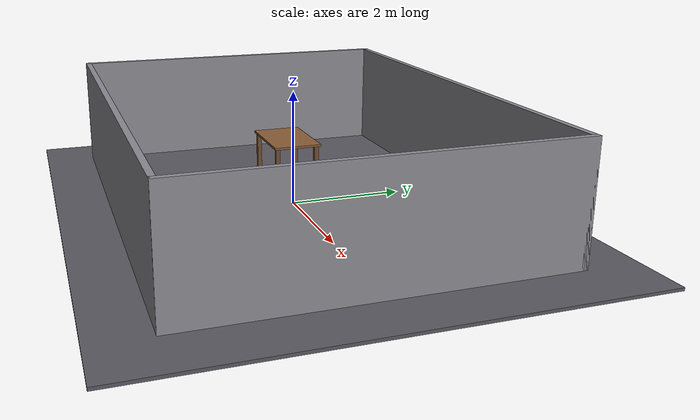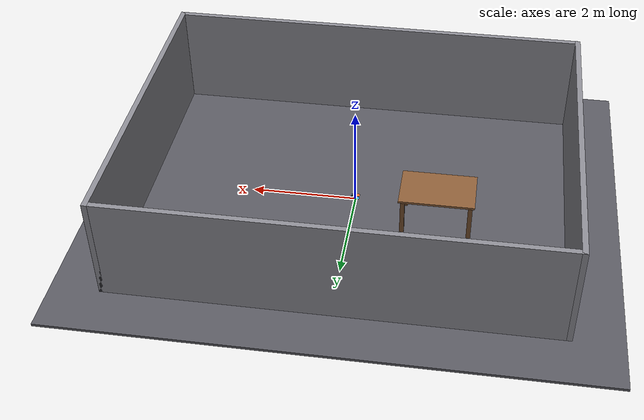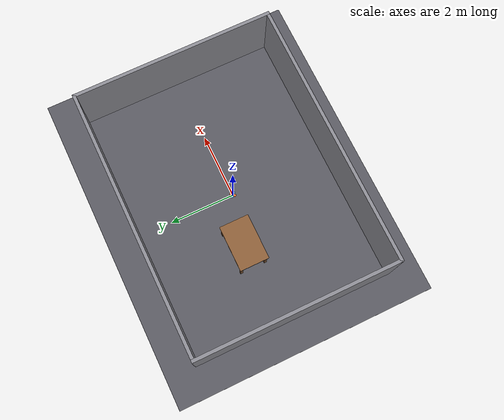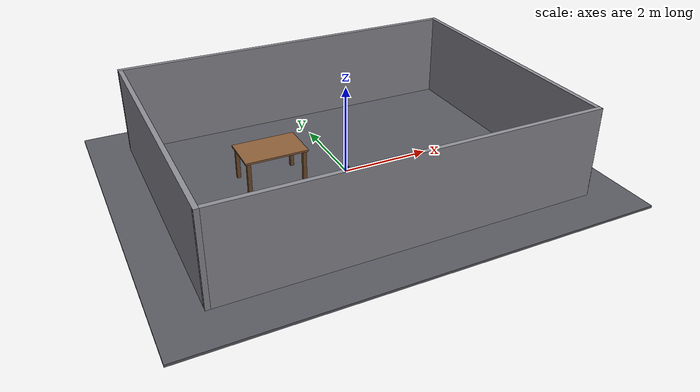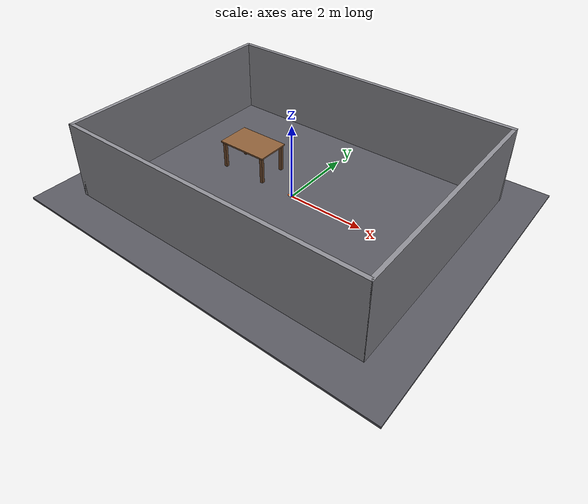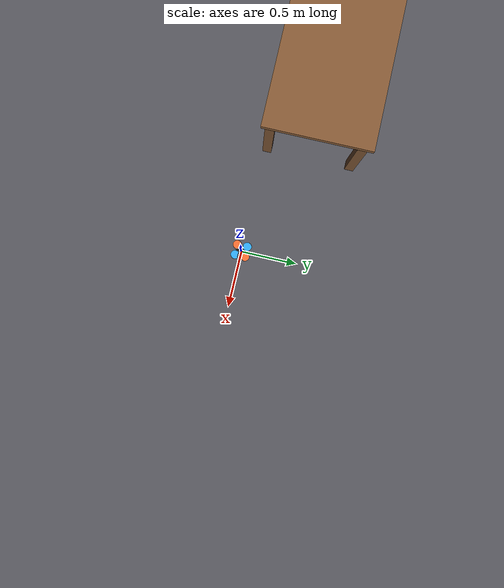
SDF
<?xml version="1.0"?>
<sdf version="1.10">
  <world name="table_room">
    <plugin filename="gz-sim-physics-system" name="gz::sim::systems::Physics"/>
    <plugin filename="gz-sim-user-commands-system" name="gz::sim::systems::UserCommands"/>
    <plugin filename="gz-sim-scene-broadcaster-system" name="gz::sim::systems::SceneBroadcaster"/>
    <plugin filename="gz-sim-sensors-system" name="gz::sim::systems::Sensors">
      <render_engine>ogre2</render_engine>
    </plugin>
    <plugin filename="gz-sim-imu-system" name="gz::sim::systems::Imu"/>

    <gravity>0 0 -9.80665</gravity>
    <magnetic_field>6e-06 2.3e-05 -4.2e-05</magnetic_field>
    <atmosphere type="adiabatic"/>

    <light name="ceiling_light" type="directional">
      <pose>0 0 4 0 0 0</pose>
      <diffuse>0.9 0.9 0.9 1</diffuse>
      <specular>0.2 0.2 0.2 1</specular>
      <direction>-0.3 0.2 -1</direction>
    </light>

    <model name="floor">
      <static>true</static>
      <pose>0 0 -0.025 0 0 0</pose>
      <link name="link">
        <collision name="collision">
          <geometry><box><size>10 8 0.05</size></box></geometry>
        </collision>
        <visual name="visual">
          <geometry><box><size>10 8 0.05</size></box></geometry>
          <material><diffuse>0.35 0.35 0.38 1</diffuse></material>
        </visual>
      </link>
    </model>

    <!-- The same 8 by 6 m room as room_test.sdf and cluttered_room.sdf, so the
         walls are one known quantity and the table is the only new one. -->
    <model name="wall_x_plus">
      <static>true</static>
      <pose>4.05 0 1.0 0 0 0</pose>
      <link name="link">
        <collision name="collision"><geometry><box><size>0.1 6.2 2.0</size></box></geometry></collision>
        <visual name="visual">
          <geometry><box><size>0.1 6.2 2.0</size></box></geometry>
          <material><diffuse>0.55 0.55 0.58 1</diffuse></material>
        </visual>
      </link>
    </model>

    <model name="wall_x_minus">
      <static>true</static>
      <pose>-4.05 0 1.0 0 0 0</pose>
      <link name="link">
        <collision name="collision"><geometry><box><size>0.1 6.2 2.0</size></box></geometry></collision>
        <visual name="visual">
          <geometry><box><size>0.1 6.2 2.0</size></box></geometry>
          <material><diffuse>0.55 0.55 0.58 1</diffuse></material>
        </visual>
      </link>
    </model>

    <model name="wall_y_plus">
      <static>true</static>
      <pose>0 3.05 1.0 0 0 0</pose>
      <link name="link">
        <collision name="collision"><geometry><box><size>8.2 0.1 2.0</size></box></geometry></collision>
        <visual name="visual">
          <geometry><box><size>8.2 0.1 2.0</size></box></geometry>
          <material><diffuse>0.55 0.55 0.58 1</diffuse></material>
        </visual>
      </link>
    </model>

    <model name="wall_y_minus">
      <static>true</static>
      <pose>0 -3.05 1.0 0 0 0</pose>
      <link name="link">
        <collision name="collision"><geometry><box><size>8.2 0.1 2.0</size></box></geometry></collision>
        <visual name="visual">
          <geometry><box><size>8.2 0.1 2.0</size></box></geometry>
          <material><diffuse>0.55 0.55 0.58 1</diffuse></material>
        </visual>
      </link>
    </model>

    <model name="table_top">
      <static>true</static>
      <pose>-1.6 0.4 0.75 0 0 0</pose>
      <link name="link">
        <collision name="collision"><geometry><box><size>1.4 0.9 0.04</size></box></geometry></collision>
        <visual name="visual">
          <geometry><box><size>1.4 0.9 0.04</size></box></geometry>
          <material><diffuse>0.55 0.37 0.22 1</diffuse></material>
        </visual>
      </link>
    </model>

    <model name="table_leg_a">
      <static>true</static>
      <pose>-2.22 0.02 0.365 0 0 0</pose>
      <link name="link">
        <collision name="collision"><geometry><box><size>0.08 0.08 0.73</size></box></geometry></collision>
        <visual name="visual">
          <geometry><box><size>0.08 0.08 0.73</size></box></geometry>
          <material><diffuse>0.45 0.30 0.18 1</diffuse></material>
        </visual>
      </link>
    </model>

    <model name="table_leg_b">
      <static>true</static>
      <pose>-2.22 0.78 0.365 0 0 0</pose>
      <link name="link">
        <collision name="collision"><geometry><box><size>0.08 0.08 0.73</size></box></geometry></collision>
        <visual name="visual">
          <geometry><box><size>0.08 0.08 0.73</size></box></geometry>
          <material><diffuse>0.45 0.30 0.18 1</diffuse></material>
        </visual>
      </link>
    </model>

    <model name="table_leg_c">
      <static>true</static>
      <pose>-0.98 0.02 0.365 0 0 0</pose>
      <link name="link">
        <collision name="collision"><geometry><box><size>0.08 0.08 0.73</size></box></geometry></collision>
        <visual name="visual">
          <geometry><box><size>0.08 0.08 0.73</size></box></geometry>
          <material><diffuse>0.45 0.30 0.18 1</diffuse></material>
        </visual>
      </link>
    </model>

    <model name="table_leg_d">
      <static>true</static>
      <pose>-0.98 0.78 0.365 0 0 0</pose>
      <link name="link">
        <collision name="collision"><geometry><box><size>0.08 0.08 0.73</size></box></geometry></collision>
        <visual name="visual">
          <geometry><box><size>0.08 0.08 0.73</size></box></geometry>
          <material><diffuse>0.45 0.30 0.18 1</diffuse></material>
        </visual>
      </link>
    </model>
    <!-- The vehicle itself, at the origin as in every other world here, which
         puts it 1.6 m clear of the table's near legs: far enough to fly at the
         table rather than starting under it. -->
    <include>
      <uri>model://openipc_cinewhoop</uri>
      <pose>0 0 0.035 0 0 0</pose>
    </include>
  </world>
</sdf>

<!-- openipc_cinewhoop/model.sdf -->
<sdf version="1.10">
  <model name="openipc_cinewhoop">
    <!-- World placement belongs to the including world, not the model. -->
    <pose>0 0 0 0 0 0</pose>
    <static>false</static>

    <!-- Publish rotor motion so motor mapping can be verified headlessly. -->
    <plugin filename="gz-sim-joint-state-publisher-system"
            name="gz::sim::systems::JointStatePublisher"/>

    <link name="base_link">
      <inertial>
        <mass>0.228</mass>
        <inertia>
          <ixx>0.00028</ixx>
          <iyy>0.00028</iyy>
          <izz>0.00048</izz>
          <ixy>0</ixy>
          <ixz>0</ixz>
          <iyz>0</iyz>
        </inertia>
      </inertial>
      <collision name="body_collision">
        <geometry><box><size>0.105 0.105 0.018</size></box></geometry>
      </collision>
      <visual name="body_visual">
        <geometry><box><size>0.105 0.105 0.018</size></box></geometry>
        <material><diffuse>0.04 0.045 0.05 1</diffuse></material>
      </visual>
    </link>

    <link name="front_lidar_link">
      <pose relative_to="base_link">0.046 0 0.050 0 0 0</pose>
      <inertial><mass>0.042</mass><inertia><ixx>0.0000078</ixx><iyy>0.0000078</iyy><izz>0.0000078</izz></inertia></inertial>
      <visual name="visual">
        <geometry><box><size>0.0386 0.0386 0.0333</size></box></geometry>
        <material><diffuse>0.24 0.24 0.26 1</diffuse></material>
      </visual>
      <sensor name="front_lidar" type="gpu_lidar">
        <gz_frame_id>front_lidar_link</gz_frame_id>
        <always_on>true</always_on>
        <update_rate>10</update_rate>
        <ray>
          <scan>
            <horizontal>
              <samples>360</samples>
              <resolution>1</resolution>
              <min_angle>-3.141593</min_angle>
              <max_angle>3.141593</max_angle>
            </horizontal>
            <vertical>
              <samples>1</samples>
              <resolution>1</resolution>
              <min_angle>0</min_angle>
              <max_angle>0</max_angle>
            </vertical>
          </scan>
          <range>
            <min>0.02</min>
            <max>12.0</max>
            <resolution>0.01</resolution>
          </range>
        </ray>
      </sensor>
    </link>
    <joint name="front_lidar_joint" type="fixed">
      <parent>base_link</parent>
      <child>front_lidar_link</child>
    </joint>

    <link name="rangefinder_link">
      <pose relative_to="base_link">0.020 0 -0.016 0 1.57079632679 0</pose>
      <inertial><mass>0.002</mass><inertia><ixx>0.0000001</ixx><iyy>0.0000001</iyy><izz>0.0000001</izz></inertia></inertial>
      <sensor name="down_range" type="gpu_lidar">
        <gz_frame_id>rangefinder_link</gz_frame_id>
        <always_on>true</always_on>
        <update_rate>20</update_rate>
        <ray>
          <scan>
            <horizontal>
              <samples>5</samples>
              <resolution>1</resolution>
              <min_angle>-0.0175</min_angle>
              <max_angle>0.0175</max_angle>
            </horizontal>
          </scan>
          <range>
            <min>0.05</min>
            <max>5.0</max>
            <resolution>0.01</resolution>
          </range>
        </ray>
      </sensor>
    </link>
    <joint name="rangefinder_joint" type="fixed">
      <parent>base_link</parent>
      <child>rangefinder_link</child>
    </joint>

    <link name="imu_link">
      <pose relative_to="base_link">0 0 0.018 0 0 0</pose>
      <inertial><mass>0.002</mass><inertia><ixx>0.0000001</ixx><iyy>0.0000001</iyy><izz>0.0000001</izz></inertia></inertial>
      <sensor name="imu" type="imu">
        <gz_frame_id>imu_link</gz_frame_id>
        <pose degrees="true">0 0 0 180 0 0</pose>
        <always_on>true</always_on>
        <!-- Iris runs its IMU at 1000 Hz; raising ours is worth doing once the
             rotor velocity loop is stable enough to benefit from it. -->
        <update_rate>100</update_rate>
      </sensor>
      <sensor name="imu_ros" type="imu">
        <gz_frame_id>imu_link</gz_frame_id>
        <always_on>true</always_on>
        <update_rate>100</update_rate>
      </sensor>
    </link>
    <joint name="imu_joint" type="fixed">
      <parent>base_link</parent>
      <child>imu_link</child>
    </joint>

    <link name="camera_link">
      <pose relative_to="base_link">0.068 0 0.012 0 0 0</pose>
      <inertial><mass>0.006</mass><inertia><ixx>0.0000005</ixx><iyy>0.0000005</iyy><izz>0.0000005</izz></inertia></inertial>
      <visual name="visual">
        <geometry><box><size>0.026 0.022 0.020</size></box></geometry>
        <material><diffuse>0.08 0.08 0.08 1</diffuse></material>
      </visual>
      <sensor name="front_camera" type="camera">
        <gz_frame_id>camera_optical_frame</gz_frame_id>
        <pose>0.014 0 0 0 0 0</pose>
        <always_on>true</always_on>
        <update_rate>15</update_rate>
        <camera>
          <horizontal_fov>1.3962634</horizontal_fov>
          <image>
            <width>640</width>
            <height>480</height>
            <format>R8G8B8</format>
          </image>
          <clip>
            <near>0.05</near>
            <far>20</far>
          </clip>
        </camera>
      </sensor>
    </link>
    <joint name="camera_joint" type="fixed">
      <parent>base_link</parent>
      <child>camera_link</child>
    </joint>

    <link name="motor_1"><pose relative_to="base_link">0.04525 -0.04525 0.012 0 0 0</pose><inertial><mass>0.005</mass><inertia><ixx>0.0000002</ixx><iyy>0.0000002</iyy><izz>0.0000002</izz></inertia></inertial></link>
    <joint name="motor_1_joint" type="fixed"><parent>base_link</parent><child>motor_1</child></joint>
    <link name="motor_2"><pose relative_to="base_link">-0.04525 0.04525 0.012 0 0 0</pose><inertial><mass>0.005</mass><inertia><ixx>0.0000002</ixx><iyy>0.0000002</iyy><izz>0.0000002</izz></inertia></inertial></link>
    <joint name="motor_2_joint" type="fixed"><parent>base_link</parent><child>motor_2</child></joint>
    <link name="motor_3"><pose relative_to="base_link">0.04525 0.04525 0.012 0 0 0</pose><inertial><mass>0.005</mass><inertia><ixx>0.0000002</ixx><iyy>0.0000002</iyy><izz>0.0000002</izz></inertia></inertial></link>
    <joint name="motor_3_joint" type="fixed"><parent>base_link</parent><child>motor_3</child></joint>
    <link name="motor_4"><pose relative_to="base_link">-0.04525 -0.04525 0.012 0 0 0</pose><inertial><mass>0.005</mass><inertia><ixx>0.0000002</ixx><iyy>0.0000002</iyy><izz>0.0000002</izz></inertia></inertial></link>
    <joint name="motor_4_joint" type="fixed"><parent>base_link</parent><child>motor_4</child></joint>

    <!-- 3 inch propellers, ordered like ArduPilot's Quad X reference model. -->
    <link name="rotor_0"><pose relative_to="base_link">0.04525 -0.04525 0.025 0 0 0</pose><inertial><mass>0.0015</mass><inertia><ixx>0.0000004</ixx><iyy>0.0000004</iyy><izz>0.0000008</izz></inertia></inertial><visual name="prop"><geometry><cylinder><radius>0.0381</radius><length>0.002</length></cylinder></geometry><material><diffuse>0.2 0.7 1 1</diffuse></material></visual></link>
    <joint name="rotor_0_joint" type="revolute"><parent>base_link</parent><child>rotor_0</child><axis><xyz>0 0 1</xyz><limit><lower>-1e16</lower><upper>1e16</upper></limit><dynamics><damping>0.0002</damping></dynamics></axis></joint>
    <link name="rotor_1"><pose relative_to="base_link">-0.04525 0.04525 0.025 0 0 0</pose><inertial><mass>0.0015</mass><inertia><ixx>0.0000004</ixx><iyy>0.0000004</iyy><izz>0.0000008</izz></inertia></inertial><visual name="prop"><geometry><cylinder><radius>0.0381</radius><length>0.002</length></cylinder></geometry><material><diffuse>0.2 0.7 1 1</diffuse></material></visual></link>
    <joint name="rotor_1_joint" type="revolute"><parent>base_link</parent><child>rotor_1</child><axis><xyz>0 0 1</xyz><limit><lower>-1e16</lower><upper>1e16</upper></limit><dynamics><damping>0.0002</damping></dynamics></axis></joint>
    <link name="rotor_2"><pose relative_to="base_link">0.04525 0.04525 0.025 0 0 0</pose><inertial><mass>0.0015</mass><inertia><ixx>0.0000004</ixx><iyy>0.0000004</iyy><izz>0.0000008</izz></inertia></inertial><visual name="prop"><geometry><cylinder><radius>0.0381</radius><length>0.002</length></cylinder></geometry><material><diffuse>1 0.45 0.2 1</diffuse></material></visual></link>
    <joint name="rotor_2_joint" type="revolute"><parent>base_link</parent><child>rotor_2</child><axis><xyz>0 0 1</xyz><limit><lower>-1e16</lower><upper>1e16</upper></limit><dynamics><damping>0.0002</damping></dynamics></axis></joint>
    <link name="rotor_3"><pose relative_to="base_link">-0.04525 -0.04525 0.025 0 0 0</pose><inertial><mass>0.0015</mass><inertia><ixx>0.0000004</ixx><iyy>0.0000004</iyy><izz>0.0000008</izz></inertia></inertial><visual name="prop"><geometry><cylinder><radius>0.0381</radius><length>0.002</length></cylinder></geometry><material><diffuse>1 0.45 0.2 1</diffuse></material></visual></link>
    <joint name="rotor_3_joint" type="revolute"><parent>base_link</parent><child>rotor_3</child><axis><xyz>0 0 1</xyz><limit><lower>-1e16</lower><upper>1e16</upper></limit><dynamics><damping>0.0002</damping></dynamics></axis></joint>

    <!-- Two blade surfaces per propeller. The paired forward directions give
         a rotating propeller lift without adding collisions to the ducts. -->

    <!--
      The ArduPilot Gazebo plugin exchanges IMU and pose state as JSON with
      SITL and drives the four aerodynamic propeller joints below.
    -->
    <plugin filename="gz-sim-multicopter-motor-model-system"
            name="gz::sim::systems::MulticopterMotorModel">
      <robotNamespace>openipc_cinewhoop</robotNamespace>
      <commandSubTopic>command/motor_speed</commandSubTopic>
      <jointName>rotor_0_joint</jointName>
      <linkName>rotor_0</linkName>
      <actuator_number>0</actuator_number>
      <turningDirection>ccw</turningDirection>
      <motorType>velocity</motorType>
      <maxRotVelocity>3980</maxRotVelocity>
      <motorConstant>2.20e-07</motorConstant>
      <momentConstant>0.013</momentConstant>
      <timeConstantUp>0.0125</timeConstantUp>
      <timeConstantDown>0.025</timeConstantDown>
      <rotorDragCoefficient>1.0e-05</rotorDragCoefficient>
      <rollingMomentCoefficient>1.0e-07</rollingMomentCoefficient>
      <rotorVelocitySlowdownSim>10</rotorVelocitySlowdownSim>
    </plugin>
    <plugin filename="gz-sim-multicopter-motor-model-system"
            name="gz::sim::systems::MulticopterMotorModel">
      <robotNamespace>openipc_cinewhoop</robotNamespace>
      <commandSubTopic>command/motor_speed</commandSubTopic>
      <jointName>rotor_1_joint</jointName>
      <linkName>rotor_1</linkName>
      <actuator_number>1</actuator_number>
      <turningDirection>ccw</turningDirection>
      <motorType>velocity</motorType>
      <maxRotVelocity>3980</maxRotVelocity>
      <motorConstant>2.20e-07</motorConstant>
      <momentConstant>0.013</momentConstant>
      <timeConstantUp>0.0125</timeConstantUp>
      <timeConstantDown>0.025</timeConstantDown>
      <rotorDragCoefficient>1.0e-05</rotorDragCoefficient>
      <rollingMomentCoefficient>1.0e-07</rollingMomentCoefficient>
      <rotorVelocitySlowdownSim>10</rotorVelocitySlowdownSim>
    </plugin>
    <plugin filename="gz-sim-multicopter-motor-model-system"
            name="gz::sim::systems::MulticopterMotorModel">
      <robotNamespace>openipc_cinewhoop</robotNamespace>
      <commandSubTopic>command/motor_speed</commandSubTopic>
      <jointName>rotor_2_joint</jointName>
      <linkName>rotor_2</linkName>
      <actuator_number>2</actuator_number>
      <turningDirection>cw</turningDirection>
      <motorType>velocity</motorType>
      <maxRotVelocity>3980</maxRotVelocity>
      <motorConstant>2.20e-07</motorConstant>
      <momentConstant>0.013</momentConstant>
      <timeConstantUp>0.0125</timeConstantUp>
      <timeConstantDown>0.025</timeConstantDown>
      <rotorDragCoefficient>1.0e-05</rotorDragCoefficient>
      <rollingMomentCoefficient>1.0e-07</rollingMomentCoefficient>
      <rotorVelocitySlowdownSim>10</rotorVelocitySlowdownSim>
    </plugin>
    <plugin filename="gz-sim-multicopter-motor-model-system"
            name="gz::sim::systems::MulticopterMotorModel">
      <robotNamespace>openipc_cinewhoop</robotNamespace>
      <commandSubTopic>command/motor_speed</commandSubTopic>
      <jointName>rotor_3_joint</jointName>
      <linkName>rotor_3</linkName>
      <actuator_number>3</actuator_number>
      <turningDirection>cw</turningDirection>
      <motorType>velocity</motorType>
      <maxRotVelocity>3980</maxRotVelocity>
      <motorConstant>2.20e-07</motorConstant>
      <momentConstant>0.013</momentConstant>
      <timeConstantUp>0.0125</timeConstantUp>
      <timeConstantDown>0.025</timeConstantDown>
      <rotorDragCoefficient>1.0e-05</rotorDragCoefficient>
      <rollingMomentCoefficient>1.0e-07</rollingMomentCoefficient>
      <rotorVelocitySlowdownSim>10</rotorVelocitySlowdownSim>
    </plugin>

    <plugin name="ArduPilotPlugin" filename="ArduPilotPlugin">
      <fdm_addr>127.0.0.1</fdm_addr>
      <fdm_port_in>9002</fdm_port_in>
      <connectionTimeoutMaxCount>5</connectionTimeoutMaxCount>
      <lock_step>1</lock_step>
      <no_time_sync>1</no_time_sync>

      <!-- Convert Gazebo ENU / FLU into ArduPilot NED / FRD. -->
      <modelXYZToAirplaneXForwardZDown degrees="true">0 0 0 180 0 0</modelXYZToAirplaneXForwardZDown>
      <gazeboXYZToNED degrees="true">0 0 0 180 0 90</gazeboXYZToNED>

      <imuName>imu_link::imu</imuName>

      <!-- Quad X mapping follows the Iris reference model, scaled for 3 in props. -->
      <control channel="0"><jointName>rotor_0_joint</jointName><multiplier>3980</multiplier><offset>0</offset><servo_min>1100</servo_min><servo_max>1900</servo_max><type>COMMAND</type><cmd_topic>/model/openipc_cinewhoop/joint/rotor_0_joint/cmd</cmd_topic></control>
      <control channel="1"><jointName>rotor_1_joint</jointName><multiplier>3980</multiplier><offset>0</offset><servo_min>1100</servo_min><servo_max>1900</servo_max><type>COMMAND</type><cmd_topic>/model/openipc_cinewhoop/joint/rotor_1_joint/cmd</cmd_topic></control>
      <control channel="2"><jointName>rotor_2_joint</jointName><multiplier>3980</multiplier><offset>0</offset><servo_min>1100</servo_min><servo_max>1900</servo_max><type>COMMAND</type><cmd_topic>/model/openipc_cinewhoop/joint/rotor_2_joint/cmd</cmd_topic></control>
      <control channel="3"><jointName>rotor_3_joint</jointName><multiplier>3980</multiplier><offset>0</offset><servo_min>1100</servo_min><servo_max>1900</servo_max><type>COMMAND</type><cmd_topic>/model/openipc_cinewhoop/joint/rotor_3_joint/cmd</cmd_topic></control>
    </plugin>
  </model>
</sdf>
